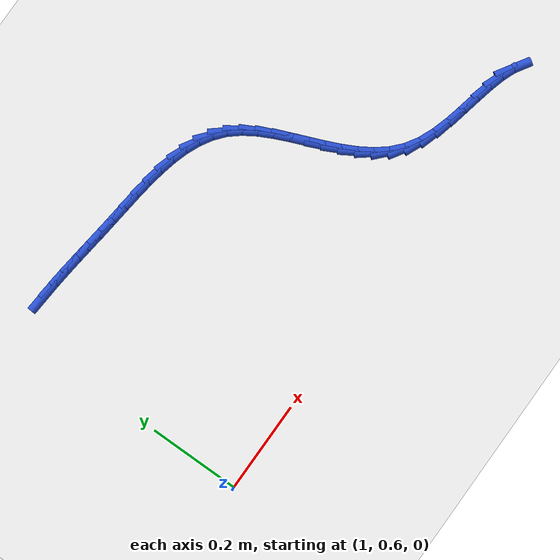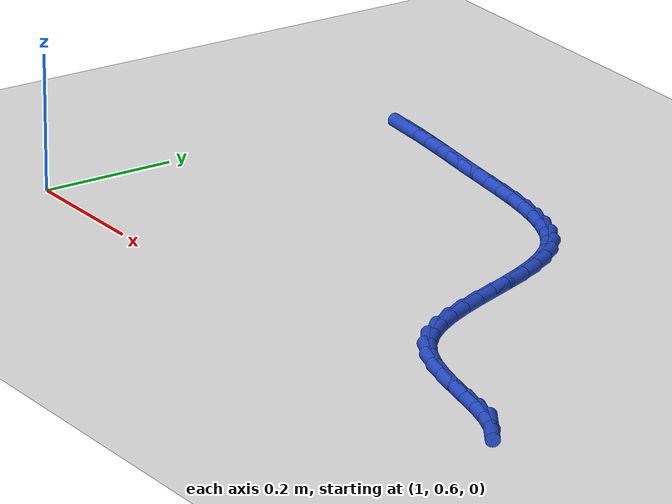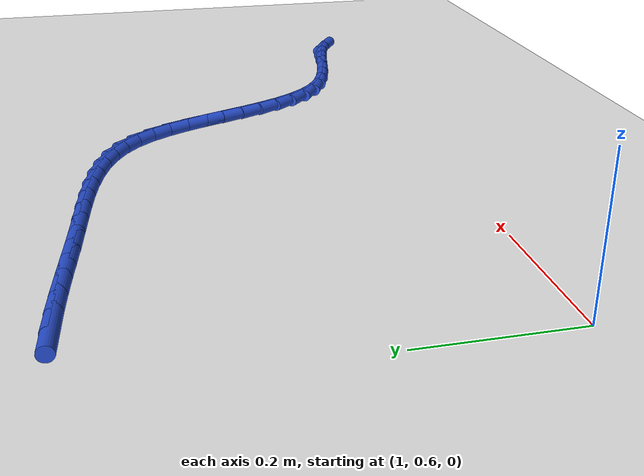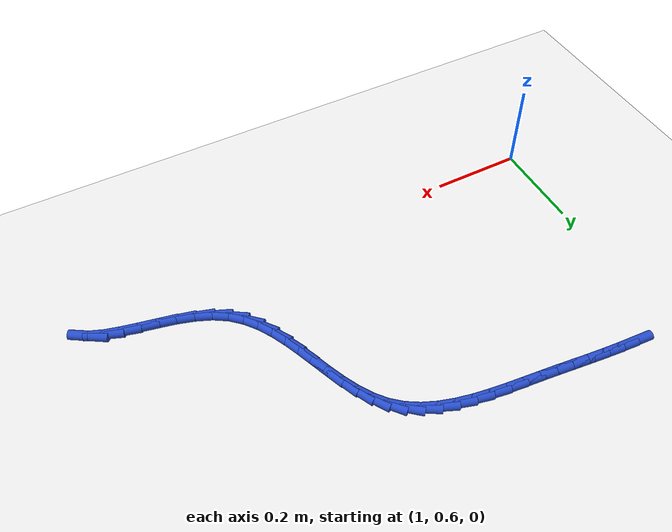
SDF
<sdf version="1.6">
 <world name="default">
  <model name="ground_plane">
   <static>1</static>
   <link name="link">
    <collision name="collision">
     <geometry><plane><normal>0 0 1</normal><size>100 100</size></plane></geometry>
     <surface><friction><ode><mu>100</mu><mu2>50</mu2></ode></friction></surface>
    </collision>
    <visual name="visual">
     <cast_shadows>0</cast_shadows>
     <geometry><plane><normal>0 0 1</normal><size>100 100</size></plane></geometry>
     <material>
      <script><uri>file://media/materials/scripts/gazebo.material</uri><name>Gazebo/WhiteGlow</name></script>
     </material>
    </visual>
   </link>
  </model>
  <model name="line">
   <link name="link_52">
    <pose>1.0928083898072063 1.1425011894817672 0.01 0 1.57 -0.07791857481641183</pose>
    <collision name="collision">
     <geometry><cylinder><radius>0.01</radius><length>0.08</length></cylinder></geometry>
    </collision>
    <visual name="visual">
     <material>
      <script><name>Gazebo/Blue</name><uri>file://media/materials/scripts/gazebo.material</uri></script>
     </material>
     <geometry><cylinder><radius>0.01</radius><length>0.08</length></cylinder></geometry>
    </visual>
   </link>
   <link name="link_53">
    <pose>1.1258577632420914 1.139920805190844 0.01 0 1.57 -0.10042279229799518</pose>
    <collision name="collision">
     <geometry><cylinder><radius>0.01</radius><length>0.08</length></cylinder></geometry>
    </collision>
    <visual name="visual">
     <material>
      <script><name>Gazebo/Blue</name><uri>file://media/materials/scripts/gazebo.material</uri></script>
     </material>
     <geometry><cylinder><radius>0.01</radius><length>0.08</length></cylinder></geometry>
    </visual>
   </link>
   <link name="link_54">
    <pose>1.1592806268920457 1.1365530593339643 0.01 0 1.57 -0.11577339099681037</pose>
    <collision name="collision">
     <geometry><cylinder><radius>0.01</radius><length>0.08</length></cylinder></geometry>
    </collision>
    <visual name="visual">
     <material>
      <script><name>Gazebo/Blue</name><uri>file://media/materials/scripts/gazebo.material</uri></script>
     </material>
     <geometry><cylinder><radius>0.01</radius><length>0.08</length></cylinder></geometry>
    </visual>
   </link>
   <link name="link_55">
    <pose>1.1931102228579493 1.1326188994245268 0.01 0 1.57 -0.12423806005680807</pose>
    <collision name="collision">
     <geometry><cylinder><radius>0.01</radius><length>0.08</length></cylinder></geometry>
    </collision>
    <visual name="visual">
     <material>
      <script><name>Gazebo/Blue</name><uri>file://media/materials/scripts/gazebo.material</uri></script>
     </material>
     <geometry><cylinder><radius>0.01</radius><length>0.08</length></cylinder></geometry>
    </visual>
   </link>
   <link name="link_56">
    <pose>1.2273797932406816 1.1283392729759294 0.01 0 1.57 -0.12609178428700302</pose>
    <collision name="collision">
     <geometry><cylinder><radius>0.01</radius><length>0.08</length></cylinder></geometry>
    </collision>
    <visual name="visual">
     <material>
      <script><name>Gazebo/Blue</name><uri>file://media/materials/scripts/gazebo.material</uri></script>
     </material>
     <geometry><cylinder><radius>0.01</radius><length>0.08</length></cylinder></geometry>
    </visual>
   </link>
   <link name="link_57">
    <pose>1.2621225801411218 1.123935127501571 0.01 0 1.57 -0.12160437276888106</pose>
    <collision name="collision">
     <geometry><cylinder><radius>0.01</radius><length>0.08</length></cylinder></geometry>
    </collision>
    <visual name="visual">
     <material>
      <script><name>Gazebo/Blue</name><uri>file://media/materials/scripts/gazebo.material</uri></script>
     </material>
     <geometry><cylinder><radius>0.01</radius><length>0.08</length></cylinder></geometry>
    </visual>
   </link>
   <link name="link_58">
    <pose>1.2973718256601496 1.1196274105148505 0.01 0 1.57 -0.11368186772770911</pose>
    <collision name="collision">
     <geometry><cylinder><radius>0.01</radius><length>0.08</length></cylinder></geometry>
    </collision>
    <visual name="visual">
     <material>
      <script><name>Gazebo/Blue</name><uri>file://media/materials/scripts/gazebo.material</uri></script>
     </material>
     <geometry><cylinder><radius>0.01</radius><length>0.08</length></cylinder></geometry>
    </visual>
   </link>
   <link name="link_59">
    <pose>1.3331003239210035 1.1155481400339555 0.01 0 1.57 -0.11686399400769015</pose>
    <collision name="collision">
     <geometry><cylinder><radius>0.01</radius><length>0.08</length></cylinder></geometry>
    </collision>
    <visual name="visual">
     <material>
      <script><name>Gazebo/Blue</name><uri>file://media/materials/scripts/gazebo.material</uri></script>
     </material>
     <geometry><cylinder><radius>0.01</radius><length>0.08</length></cylinder></geometry>
    </visual>
   </link>
   <link name="link_60">
    <pose>1.3689480223586004 1.111339658671379 0.01 0 1.57 -0.1361652440127962</pose>
    <collision name="collision">
     <geometry><cylinder><radius>0.01</radius><length>0.08</length></cylinder></geometry>
    </collision>
    <visual name="visual">
     <material>
      <script><name>Gazebo/Blue</name><uri>file://media/materials/scripts/gazebo.material</uri></script>
     </material>
     <geometry><cylinder><radius>0.01</radius><length>0.08</length></cylinder></geometry>
    </visual>
   </link>
   <link name="link_61">
    <pose>1.404440917776153 1.1064766678289122 0.01 0 1.57 -0.17259475329310695</pose>
    <collision name="collision">
     <geometry><cylinder><radius>0.01</radius><length>0.08</length></cylinder></geometry>
    </collision>
    <visual name="visual">
     <material>
      <script><name>Gazebo/Blue</name><uri>file://media/materials/scripts/gazebo.material</uri></script>
     </material>
     <geometry><cylinder><radius>0.01</radius><length>0.08</length></cylinder></geometry>
    </visual>
   </link>
   <link name="link_62">
    <pose>1.439104906690457 1.1004337213695694 0.01 0 1.57 -0.22821170906018212</pose>
    <collision name="collision">
     <geometry><cylinder><radius>0.01</radius><length>0.08</length></cylinder></geometry>
    </collision>
    <visual name="visual">
     <material>
      <script><name>Gazebo/Blue</name><uri>file://media/materials/scripts/gazebo.material</uri></script>
     </material>
     <geometry><cylinder><radius>0.01</radius><length>0.08</length></cylinder></geometry>
    </visual>
   </link>
   <link name="link_63">
    <pose>1.4724658856183068 1.0926853731563657 0.01 0 1.57 -0.3060327169421913</pose>
    <collision name="collision">
     <geometry><cylinder><radius>0.01</radius><length>0.08</length></cylinder></geometry>
    </collision>
    <visual name="visual">
     <material>
      <script><name>Gazebo/Blue</name><uri>file://media/materials/scripts/gazebo.material</uri></script>
     </material>
     <geometry><cylinder><radius>0.01</radius><length>0.08</length></cylinder></geometry>
    </visual>
   </link>
   <link name="link_64">
    <pose>1.5040497510764956 1.0827061770523154 0.01 0 1.57 -0.4096158579867372</pose>
    <collision name="collision">
     <geometry><cylinder><radius>0.01</radius><length>0.08</length></cylinder></geometry>
    </collision>
    <visual name="visual">
     <material>
      <script><name>Gazebo/Blue</name><uri>file://media/materials/scripts/gazebo.material</uri></script>
     </material>
     <geometry><cylinder><radius>0.01</radius><length>0.08</length></cylinder></geometry>
    </visual>
   </link>
   <link name="link_65">
    <pose>1.5333823995818194 1.0699706869204333 0.01 0 1.57 -0.5418782750384107</pose>
    <collision name="collision">
     <geometry><cylinder><radius>0.01</radius><length>0.08</length></cylinder></geometry>
    </collision>
    <visual name="visual">
     <material>
      <script><name>Gazebo/Blue</name><uri>file://media/materials/scripts/gazebo.material</uri></script>
     </material>
     <geometry><cylinder><radius>0.01</radius><length>0.08</length></cylinder></geometry>
    </visual>
   </link>
   <link name="link_66">
    <pose>1.5599897276510721 1.0539534566237336 0.01 0 1.57 -0.7026506939457643</pose>
    <collision name="collision">
     <geometry><cylinder><radius>0.01</radius><length>0.08</length></cylinder></geometry>
    </collision>
    <visual name="visual">
     <material>
      <script><name>Gazebo/Blue</name><uri>file://media/materials/scripts/gazebo.material</uri></script>
     </material>
     <geometry><cylinder><radius>0.01</radius><length>0.08</length></cylinder></geometry>
    </visual>
   </link>
   <link name="link_67">
    <pose>1.5833986111157163 1.0341301174946436 0.01 0 1.57 -0.8709378088086138</pose>
    <collision name="collision">
     <geometry><cylinder><radius>0.01</radius><length>0.08</length></cylinder></geometry>
    </collision>
    <visual name="visual">
     <material>
      <script><name>Gazebo/Blue</name><uri>file://media/materials/scripts/gazebo.material</uri></script>
     </material>
     <geometry><cylinder><radius>0.01</radius><length>0.08</length></cylinder></geometry>
    </visual>
   </link>
   <link name="link_68">
    <pose>1.603448067553075 1.010319727952036 0.01 0 1.57 -1.0037839767699672</pose>
    <collision name="collision">
     <geometry><cylinder><radius>0.01</radius><length>0.08</length></cylinder></geometry>
    </collision>
    <visual name="visual">
     <material>
      <script><name>Gazebo/Blue</name><uri>file://media/materials/scripts/gazebo.material</uri></script>
     </material>
     <geometry><cylinder><radius>0.01</radius><length>0.08</length></cylinder></geometry>
    </visual>
   </link>
   <link name="link_69">
    <pose>1.6207336252615434 0.9831736806867922 0.01 0 1.57 -1.0970685761213292</pose>
    <collision name="collision">
     <geometry><cylinder><radius>0.01</radius><length>0.08</length></cylinder></geometry>
    </collision>
    <visual name="visual">
     <material>
      <script><name>Gazebo/Blue</name><uri>file://media/materials/scripts/gazebo.material</uri></script>
     </material>
     <geometry><cylinder><radius>0.01</radius><length>0.08</length></cylinder></geometry>
    </visual>
   </link>
   <link name="link_70">
    <pose>1.6359631831117791 0.9534670016389394 0.01 0 1.57 -1.1556285100816297</pose>
    <collision name="collision">
     <geometry><cylinder><radius>0.01</radius><length>0.08</length></cylinder></geometry>
    </collision>
    <visual name="visual">
     <material>
      <script><name>Gazebo/Blue</name><uri>file://media/materials/scripts/gazebo.material</uri></script>
     </material>
     <geometry><cylinder><radius>0.01</radius><length>0.08</length></cylinder></geometry>
    </visual>
   </link>
   <link name="link_71">
    <pose>1.6498446399744395 0.9219747167485041 0.01 0 1.57 -1.1839378432810184</pose>
    <collision name="collision">
     <geometry><cylinder><radius>0.01</radius><length>0.08</length></cylinder></geometry>
    </collision>
    <visual name="visual">
     <material>
      <script><name>Gazebo/Blue</name><uri>file://media/materials/scripts/gazebo.material</uri></script>
     </material>
     <geometry><cylinder><radius>0.01</radius><length>0.08</length></cylinder></geometry>
    </visual>
   </link>
   <link name="link_72">
    <pose>1.6630858947201819 0.8894718519555126 0.01 0 1.57 -1.1846785325444655</pose>
    <collision name="collision">
     <geometry><cylinder><radius>0.01</radius><length>0.08</length></cylinder></geometry>
    </collision>
    <visual name="visual">
     <material>
      <script><name>Gazebo/Blue</name><uri>file://media/materials/scripts/gazebo.material</uri></script>
     </material>
     <geometry><cylinder><radius>0.01</radius><length>0.08</length></cylinder></geometry>
    </visual>
   </link>
   <link name="link_73">
    <pose>1.6763948462196643 0.8567334331999915 0.01 0 1.57 -1.1584508495011219</pose>
    <collision name="collision">
     <geometry><cylinder><radius>0.01</radius><length>0.08</length></cylinder></geometry>
    </collision>
    <visual name="visual">
     <material>
      <script><name>Gazebo/Blue</name><uri>file://media/materials/scripts/gazebo.material</uri></script>
     </material>
     <geometry><cylinder><radius>0.01</radius><length>0.08</length></cylinder></geometry>
    </visual>
   </link>
   <link name="link_74">
    <pose>1.6904793933435436 0.8245344864219678 0.01 0 1.57 -1.1038949881854618</pose>
    <collision name="collision">
     <geometry><cylinder><radius>0.01</radius><length>0.08</length></cylinder></geometry>
    </collision>
    <visual name="visual">
     <material>
      <script><name>Gazebo/Blue</name><uri>file://media/materials/scripts/gazebo.material</uri></script>
     </material>
     <geometry><cylinder><radius>0.01</radius><length>0.08</length></cylinder></geometry>
    </visual>
   </link>
   <link name="link_75">
    <pose>1.706047434962478 0.7936500375614681 0.01 0 1.57 -1.0181474535596207</pose>
    <collision name="collision">
     <geometry><cylinder><radius>0.01</radius><length>0.08</length></cylinder></geometry>
    </collision>
    <visual name="visual">
     <material>
      <script><name>Gazebo/Blue</name><uri>file://media/materials/scripts/gazebo.material</uri></script>
     </material>
     <geometry><cylinder><radius>0.01</radius><length>0.08</length></cylinder></geometry>
    </visual>
   </link>
   <link name="link_76">
    <pose>1.7238068699471243 0.7648551125585181 0.01 0 1.57 -0.8980708851463062</pose>
    <collision name="collision">
     <geometry><cylinder><radius>0.01</radius><length>0.08</length></cylinder></geometry>
    </collision>
    <visual name="visual">
     <material>
      <script><name>Gazebo/Blue</name><uri>file://media/materials/scripts/gazebo.material</uri></script>
     </material>
     <geometry><cylinder><radius>0.01</radius><length>0.08</length></cylinder></geometry>
    </visual>
   </link>
   <link name="link_77">
    <pose>1.7444655971681406 0.7389247373531456 0.01 0 1.57 -0.742999658975206</pose>
    <collision name="collision">
     <geometry><cylinder><radius>0.01</radius><length>0.08</length></cylinder></geometry>
    </collision>
    <visual name="visual">
     <material>
      <script><name>Gazebo/Blue</name><uri>file://media/materials/scripts/gazebo.material</uri></script>
     </material>
     <geometry><cylinder><radius>0.01</radius><length>0.08</length></cylinder></geometry>
    </visual>
   </link>
   <link name="link_78">
    <pose>1.7687315154961838 0.7166339378853764 0.01 0 1.57 -0.561520815706914</pose>
    <collision name="collision">
     <geometry><cylinder><radius>0.01</radius><length>0.08</length></cylinder></geometry>
    </collision>
    <visual name="visual">
     <material>
      <script><name>Gazebo/Blue</name><uri>file://media/materials/scripts/gazebo.material</uri></script>
     </material>
     <geometry><cylinder><radius>0.01</radius><length>0.08</length></cylinder></geometry>
    </visual>
   </link>
   <link name="link_79">
    <pose>1.7972450955047377 0.698696895693442 0.01 0 1.57 -0.40427435051939026</pose>
    <collision name="collision">
     <geometry><cylinder><radius>0.01</radius><length>0.08</length></cylinder></geometry>
    </collision>
    <visual name="visual">
     <material>
      <script><name>Gazebo/Blue</name><uri>file://media/materials/scripts/gazebo.material</uri></script>
     </material>
     <geometry><cylinder><radius>0.01</radius><length>0.08</length></cylinder></geometry>
    </visual>
   </link>
   <link name="link_80">
    <pose>1.829578161313358 0.6848634916147541 0.01 0 1.57 -0.2990625004846931</pose>
    <collision name="collision">
     <geometry><cylinder><radius>0.01</radius><length>0.08</length></cylinder></geometry>
    </collision>
    <visual name="visual">
     <material>
      <script><name>Gazebo/Blue</name><uri>file://media/materials/scripts/gazebo.material</uri></script>
     </material>
     <geometry><cylinder><radius>0.01</radius><length>0.08</length></cylinder></geometry>
    </visual>
   </link>
   <link name="link_81">
    <pose>1.8644482360326013 0.6741127219171279 0.01 0 1.57 -0.2367630113821042</pose>
    <collision name="collision">
     <geometry><cylinder><radius>0.01</radius><length>0.08</length></cylinder></geometry>
    </collision>
    <visual name="visual">
     <material>
      <script><name>Gazebo/Blue</name><uri>file://media/materials/scripts/gazebo.material</uri></script>
     </material>
     <geometry><cylinder><radius>0.01</radius><length>0.08</length></cylinder></geometry>
    </visual>
   </link>
   <link name="link_82">
    <pose>1.900548958164472 0.6654020304225876 0.01 0 1.57 -0.21092147853030252</pose>
    <collision name="collision">
     <geometry><cylinder><radius>0.01</radius><length>0.08</length></cylinder></geometry>
    </collision>
    <visual name="visual">
     <material>
      <script><name>Gazebo/Blue</name><uri>file://media/materials/scripts/gazebo.material</uri></script>
     </material>
     <geometry><cylinder><radius>0.01</radius><length>0.08</length></cylinder></geometry>
    </visual>
   </link>
   <link name="link_83">
    <pose>1.9365739662109722 0.657688860953158 0.01 0 1.57 -0.22031258348077554</pose>
    <collision name="collision">
     <geometry><cylinder><radius>0.01</radius><length>0.08</length></cylinder></geometry>
    </collision>
    <visual name="visual">
     <material>
      <script><name>Gazebo/Blue</name><uri>file://media/materials/scripts/gazebo.material</uri></script>
     </material>
     <geometry><cylinder><radius>0.01</radius><length>0.08</length></cylinder></geometry>
    </visual>
   </link>
   <link name="link_84">
    <pose>1.9712168986741057 0.6499306573308634 0.01 0 1.57 -0.2700618376495212</pose>
    <collision name="collision">
     <geometry><cylinder><radius>0.01</radius><length>0.08</length></cylinder></geometry>
    </collision>
    <visual name="visual">
     <material>
      <script><name>Gazebo/Blue</name><uri>file://media/materials/scripts/gazebo.material</uri></script>
     </material>
     <geometry><cylinder><radius>0.01</radius><length>0.08</length></cylinder></geometry>
    </visual>
   </link>
   <link name="link_85">
    <pose>2.0031713940558764 0.6410848633777285 0.01 0 1.57 -0.3740787132415311</pose>
    <collision name="collision">
     <geometry><cylinder><radius>0.01</radius><length>0.08</length></cylinder></geometry>
    </collision>
    <visual name="visual">
     <material>
      <script><name>Gazebo/Blue</name><uri>file://media/materials/scripts/gazebo.material</uri></script>
     </material>
     <geometry><cylinder><radius>0.01</radius><length>0.08</length></cylinder></geometry>
    </visual>
   </link>
   <link name="link_86">
    <pose>2.031131090858287 0.6301089229157777 0.01 0 1.57 -0.5581884673243785</pose>
    <collision name="collision">
     <geometry><cylinder><radius>0.01</radius><length>0.08</length></cylinder></geometry>
    </collision>
    <visual name="visual">
     <material>
      <script><name>Gazebo/Blue</name><uri>file://media/materials/scripts/gazebo.material</uri></script>
     </material>
     <geometry><cylinder><radius>0.01</radius><length>0.08</length></cylinder></geometry>
    </visual>
   </link>
  </model>
 </world>
</sdf>
